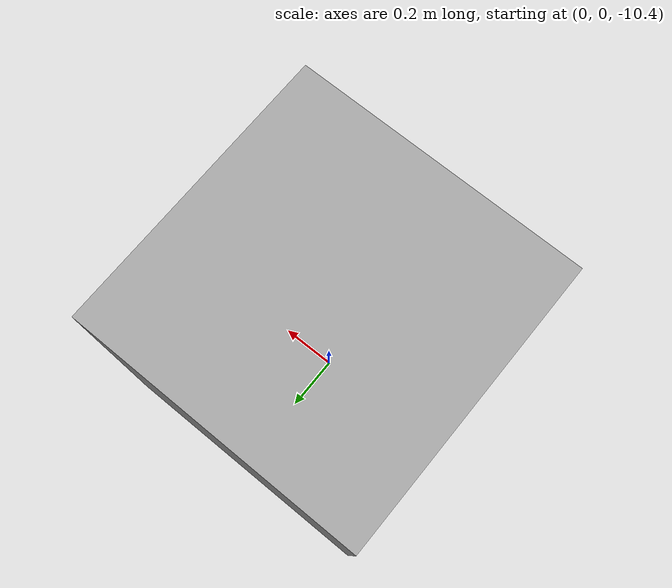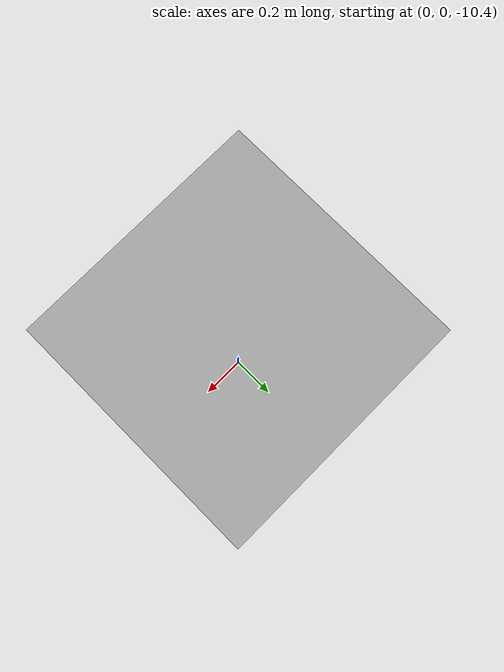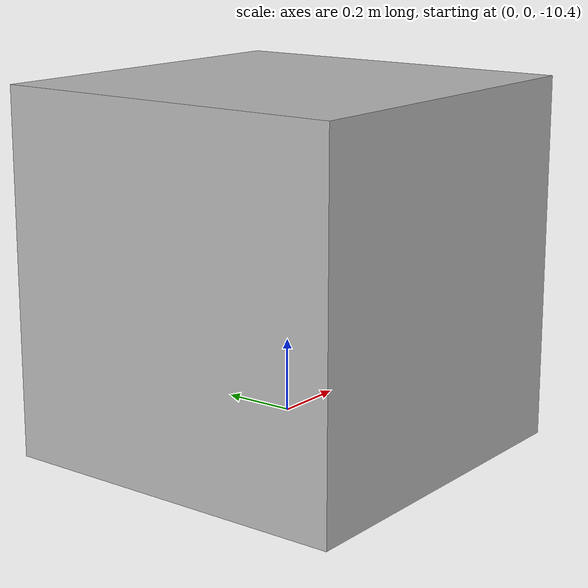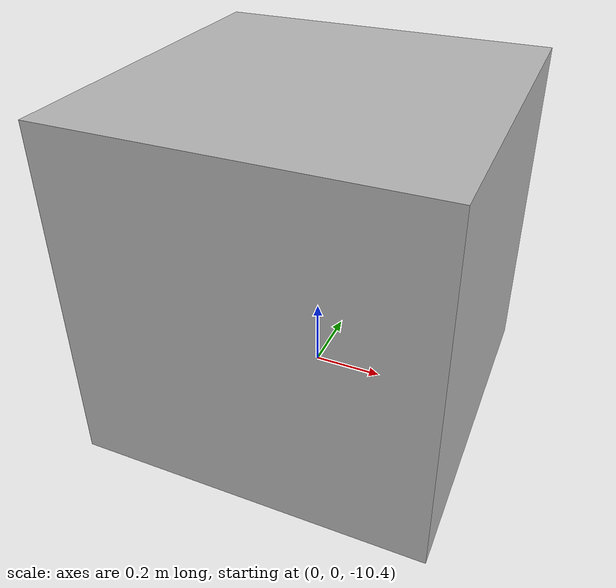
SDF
<?xml version="1.0" ?>
<sdf version="1.4">
  <model name='foo'>
    <!-- This box is placed 10 m underground and is thus expected to not be
    visible. -->
    <pose>0 0 -10 0 0 0</pose>
    <link name='link'>
      <pose>0 0 0 0 0 0</pose>
        <inertial>
          <mass>1.</mass>
        </inertial>
        <visual name='foo'>
          <pose>0 0 0 0 0 0</pose>
          <geometry>
            <box>
              <size>1. 1. 1.</size>
            </box>
          </geometry>
          <material/>
        </visual>
        <collision name='foo'>
          <geometry>
            <box>
              <size>1. 1. 1.</size>
            </box>
          </geometry>
        </collision>
    </link>
    <static>1</static>
  </model>
</sdf>
